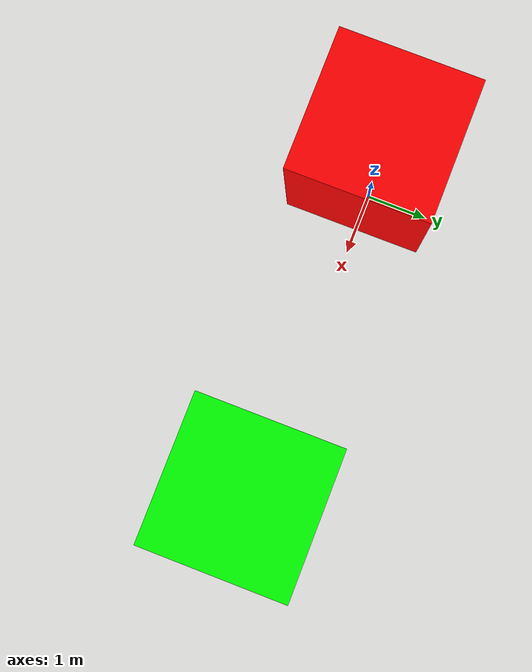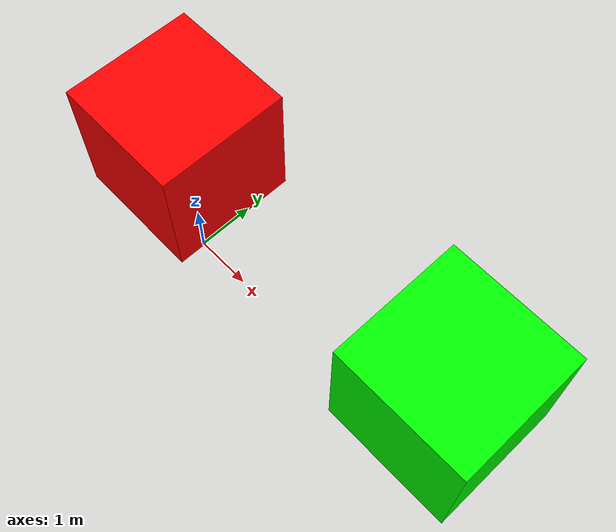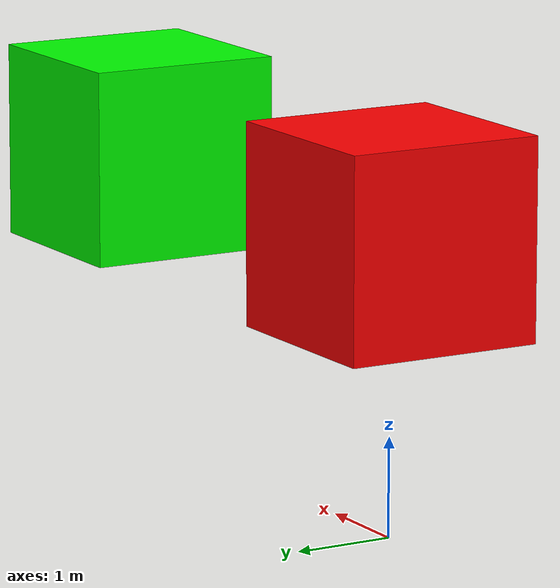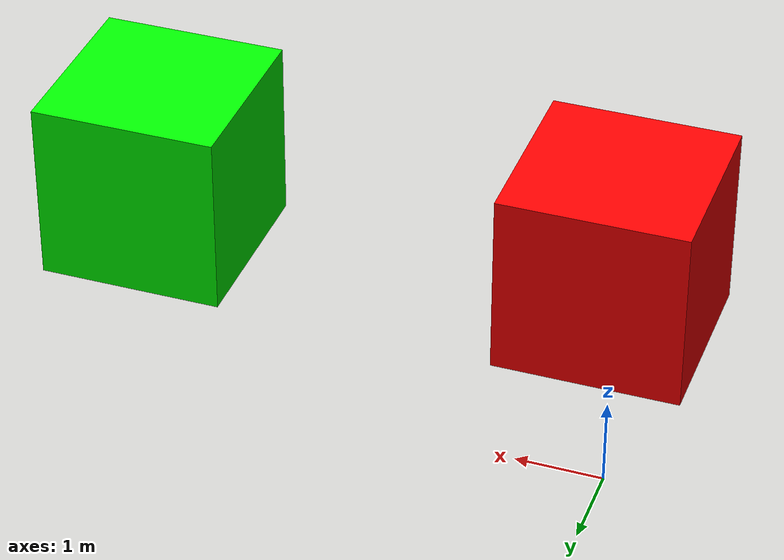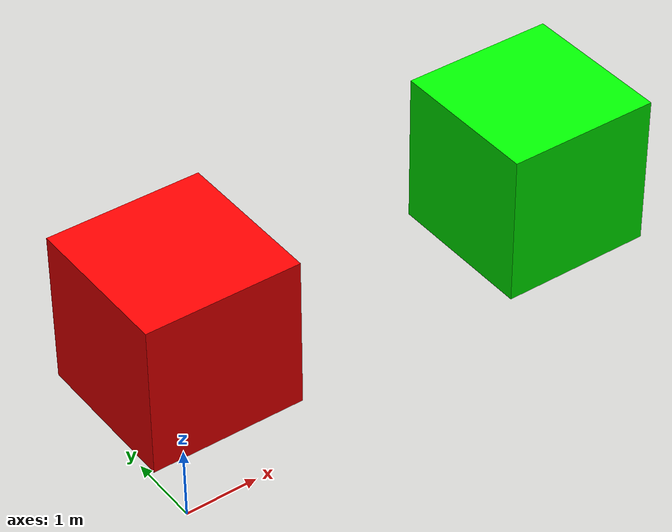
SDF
<?xml version="1.0" ?>
<sdf version="1.8">
  <world name="test_world">
    <physics name="1ms" type="ignored">
      <max_step_size>0.001</max_step_size>
      <real_time_factor>1.0</real_time_factor>
    </physics>

    <scene>
      <ambient>0.3 0.3 0.3 1.0</ambient>
      <background>0 0 0 1.0</background>
    </scene>

    <plugin filename="gz-sim-physics-system" name="gz::sim::systems::Physics"/>
    <plugin filename="gz-sim-scene-broadcaster-system" name="gz::sim::systems::SceneBroadcaster"/>

    <light type="directional" name="sun">
      <cast_shadows>true</cast_shadows>
      <pose>0 0 10 0 0 0</pose>
      <diffuse>0.8 0.8 0.8 1</diffuse>
      <specular>0.2 0.2 0.2 1</specular>
      <direction>-0.5 0.1 -0.9</direction>
    </light>

    <!-- TEST 1: Simple red box, no PBR, no texture -->
    <model name="red_box">
      <static>true</static>
      <pose>0 0 3 0 0 0</pose>
      <link name="link">
        <visual name="visual">
          <geometry>
            <box><size>2 2 2</size></box>
          </geometry>
          <material>
            <ambient>1 0 0 1</ambient>
            <diffuse>1 0 0 1</diffuse>
            <emissive>1 0 0 1</emissive>
          </material>
        </visual>
      </link>
    </model>

    <!-- TEST 2: Textured plane above using ABSOLUTE path in PBR -->
    <model name="textured_ceiling">
      <static>true</static>
      <pose>0 0 20 3.14159 0 0</pose>
      <link name="link">
        <visual name="visual">
          <geometry>
            <plane>
              <normal>0 0 1</normal>
              <size>40 40</size>
            </plane>
          </geometry>
          <material>
            <ambient>1 1 1 1</ambient>
            <diffuse>1 1 1 1</diffuse>
            <emissive>0.5 0.5 0.5 1</emissive>
            <pbr>
              <metal>
                <albedo_map>/home/melvin/ryugu_v2_ws/src/ryugu_sim/models/skydome/materials/textures/space_skybox.jpg</albedo_map>
                <roughness>1.0</roughness>
                <metalness>0.0</metalness>
              </metal>
            </pbr>
          </material>
        </visual>
      </link>
    </model>

    <!-- TEST 3: Green box, no PBR, solid color -->
    <model name="green_box">
      <static>true</static>
      <pose>5 0 3 0 0 0</pose>
      <link name="link">
        <visual name="visual">
          <geometry>
            <box><size>2 2 2</size></box>
          </geometry>
          <material>
            <ambient>0 1 0 1</ambient>
            <diffuse>0 1 0 1</diffuse>
          </material>
        </visual>
      </link>
    </model>

  </world>
</sdf>
